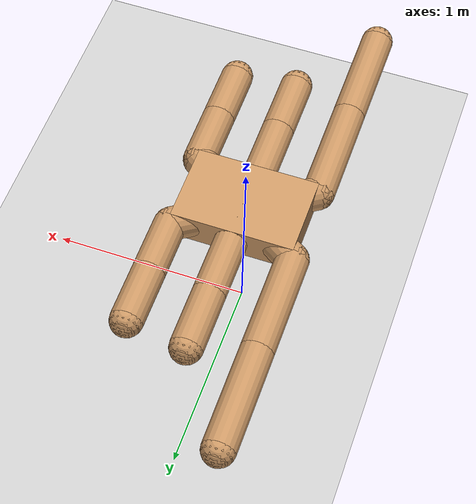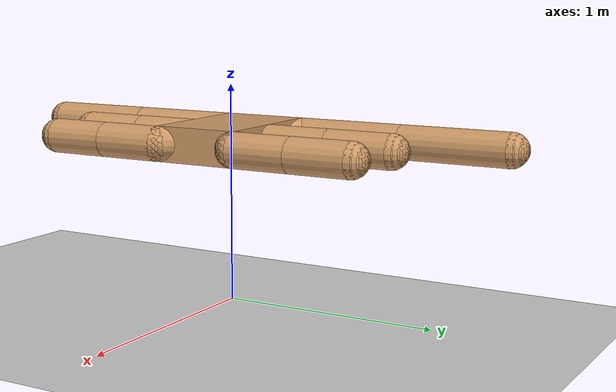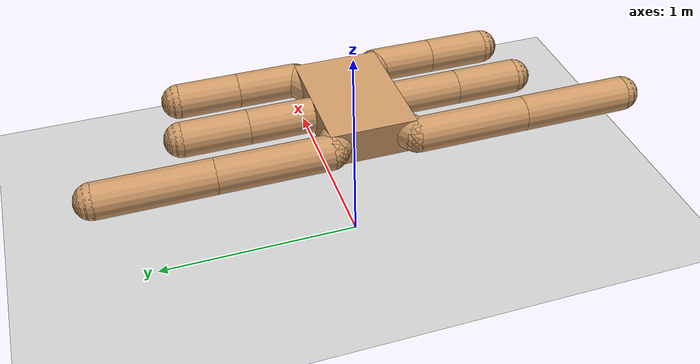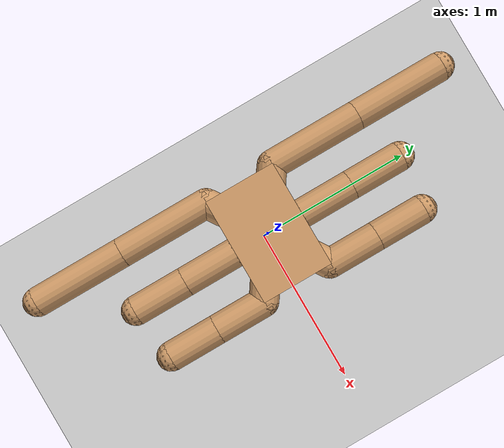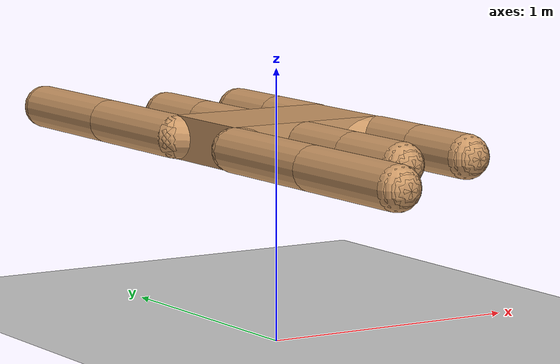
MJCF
<mujoco model="cricket2d">
  <compiler angle="degree" coordinate="local" inertiafromgeom="true"/>
  <option integrator="RK4" timestep="0.01"/>

  <custom>
    <numeric data="0.0 0.0 0.55 1.0 0.0 0.0 0.0 0.0 1.0 0.0 -1.0 0.0 -1.0 0.0 1.0" name="init_qpos"/>
  </custom>

  <default>
    <joint armature="1" damping="1" limited="true"/>
    <geom conaffinity="0" condim="3" density="5.0" friction="1 0.5 0.5" margin="0.01" rgba="0.8 0.6 0.4 1"/>
  </default>

  <asset>
    <texture builtin="gradient" height="100" rgb1="1 1 1" rgb2="0 0 0" type="skybox" width="100"/>
    <texture builtin="flat" height="1278" mark="cross" markrgb="1 1 1" name="texgeom" random="0.01" rgb1="0.8 0.6 0.4" rgb2="0.8 0.6 0.4" type="cube" width="127"/>
    <texture builtin="checker" height="100" name="texplane" rgb1=".25 .25 .25" rgb2=".3 .3 .3" type="2d" width="100" mark="cross" markrgb=".8 .8 .8"/>
    <material name="MatPlane" reflectance="0.5" shininess="1" specular="1" texrepeat="60 60" texture="texplane"/>
    <material name="geom" texture="texgeom" texuniform="true"/>
  </asset>

  <worldbody>
    <light cutoff="100" diffuse="1 1 1" dir="-0 0 -1.3" directional="true" exponent="1" pos="0 0 1.3" specular=".1 .1 .1"/>
    <geom conaffinity="1" condim="3" material="MatPlane" name="floor" pos="0 0 0" rgba="0.8 0.8 0.8 1" size="40 40 40" type="plane"/>
    <body name="torso" pos="0 0 0.75">
      <camera name="track" mode="trackcom" pos="0 -3 0.3" xyaxes="1 0 0 0 0 1"/>
      <geom name="torso_geom" type="box" pos="0 0 0" size=".3 .2 .08"/>

      <body name="LF_leg" pos="0 0 0">
        <geom fromto="0.0 0.0 0.0 0.3 0.2 0.0" name="LF_aux_geom" size="0.08" type="capsule"/>
        <body name="LF_femur" pos="0.3 0.2 0">
          <joint axis="0 0 -1" name="LF_hip" pos="0.0 0.0 0.0" range="-45 110" type="hinge"/>
          <geom fromto="0.0 0.0 0.0 0.0 0.28 0.0" name="LF_femur_geom" size="0.08" type="capsule"/>
          <body name="LF_tibia" pos="0.0 0.28 0.0">
            <joint axis="0 0 -1" name="LF_knee" pos="0.0 0.0 0.0" range="-180 180" type="hinge"/>
            <geom fromto="0.0 0.0 0.0 0.0 0.28 0.0" name="LF_tibia_geom" size="0.08" type="capsule"/>
            <geom name="LF_tip" pos="0.0 0.28 0.0" size="0.08" type="sphere"/>
          </body>
        </body>
      </body>

      <body name="RF_leg" pos="0 0 0">
        <geom fromto="0.0 0.0 0.0 0.3 -0.2 0.0" name="RF_aux_geom" size="0.08" type="capsule"/>
        <body name="RF_femur" pos="0.3 -0.2 0">
          <joint axis="0 0 -1" name="RF_hip" pos="0.0 0.0 0.0" range="-110 45" type="hinge"/>
          <geom fromto="0.0 0.0 0.0 0.0 -0.28 0.0" name="RF_femur_geom" size="0.08" type="capsule"/>
          <body name="RF_tibia" pos="0.0 -0.28 0.0">
            <joint axis="0 0 -1" name="RF_knee" pos="0.0 0.0 0.0" range="-180 180" type="hinge"/>
            <geom fromto="0.0 0.0 0.0 0.0 -0.28 0.0" name="RF_tibia_geom" size="0.08" type="capsule"/>
            <geom name="RF_tip" pos="0.0 -0.28 0.0" size="0.08" type="sphere"/>
          </body>
        </body>
      </body>

      <body name="LM_leg" pos="0 0 0">
        <geom fromto="0.0 0.0 0.0 0.0 0.2 0.0" name="LM_aux_geom" size="0.08" type="capsule"/>
        <body name="LM_femur" pos="0.0 0.2 0">
          <joint axis="0 0 -1" name="LM_hip" pos="0.0 0.0 0.0" range="-65 55" type="hinge"/>
          <geom fromto="0.0 0.0 0.0 0.0 0.3 0.0" name="LM_femur_geom" size="0.08" type="capsule"/>
          <body name="LM_tibia" pos="0.0 0.3 0.0">
            <joint axis="0 0 -1" name="LM_knee" pos="0.0 0.0 0.0" range="-180 180" type="hinge"/>
            <geom fromto="0.0 0.0 0.0 0.0 0.3 0.0" name="LM_tibia_geom" size="0.08" type="capsule"/>
            <geom name="LM_tip" pos="0.0 0.3 0.0" size="0.08" type="sphere"/>
          </body>
        </body>
      </body>

      <body name="RM_leg" pos="0 0 0">
        <geom fromto="0.0 0.0 0.0 0.0 -0.2 0.0" name="RM_aux_geom" size="0.08" type="capsule"/>
        <body name="RM_femur" pos="0.0 -0.2 0">
          <joint axis="0 0 -1" name="RM_hip" pos="0.0 0.0 0.0" range="-55 65" type="hinge"/>
          <geom fromto="0.0 0.0 0.0 0.0 -0.3 0.0" name="RM_femur_geom" size="0.08" type="capsule"/>
          <body name="RM_tibia" pos="0.0 -0.3 0.0">
            <joint axis="0 0 -1" name="RM_knee" pos="0.0 0.0 0.0" range="-180 180" type="hinge"/>
            <geom fromto="0.0 0.0 0.0 0.0 -0.3 0.0" name="RM_tibia_geom" size="0.08" type="capsule"/>
            <geom name="RM_tip" pos="0.0 -0.3 0.0" size="0.08" type="sphere"/>
          </body>
        </body>
      </body>

      <body name="LH_leg" pos="0 0 0">
        <geom fromto="0.0 0.0 0.0 -0.3 0.2 0.0" name="LH_aux_geom" size="0.08" type="capsule"/>
        <body name="LH_femur" pos="-0.3 0.2 0">
          <joint axis="0 0 -1" name="LH_hip" pos="0.0 0.0 0.0" range="-115 15" type="hinge"/>
          <geom fromto="0.0 0.0 0.0 0.0 0.51 0" name="LH_femur_geom" size="0.08" type="capsule"/>
          <body name="LH_tibia" pos="0.0 0.51 0">
            <joint axis="0 0 -1" name="LH_knee" pos="0.0 0.0 0.0" range="-180 0" type="hinge"/>
            <geom fromto="0.0 0.0 0.0 0.0 0.51 0" name="LH_tibia_geom" size="0.08" type="capsule"/>
            <geom name="LH_tip" pos="0.0 0.51 0.0" size="0.08" type="sphere"/>
          </body>
        </body>
      </body>

      <body name="RH_leg" pos="0 0 0">
        <geom fromto="0.0 0.0 0.0 -0.3 -0.2 0.0" name="RH_aux_geom" size="0.08" type="capsule"/>
        <body name="RH_femur" pos="-0.3 -0.2 0">
          <joint axis="0 0 -1" name="RH_hip" pos="0.0 0.0 0.0" range="-15 115" type="hinge"/>
          <geom fromto="0.0 0.0 0.0 0.0 -0.51 0" name="RH_femur_geom" size="0.08" type="capsule"/>
          <body name="RH_tibia" pos="0.0 -0.51 0">
            <joint axis="0 0 -1" name="RH_knee" pos="0.0 0.0 0.0" range="0 180" type="hinge"/>
            <geom fromto="0.0 0.0 0.0 0.0 -0.51 0" name="RH_tibia_geom" size="0.08" type="capsule"/>
            <geom name="RH_tip" pos="0.0 -0.51 0.0" size="0.08" type="sphere"/>
          </body>
        </body>
      </body>

    </body>
  </worldbody>

  <actuator>
    <position ctrllimited="true" ctrlrange="-0.7853981634 1.919862177" joint="LF_hip" gear="1" kp="30000"/>
    <position ctrllimited="true" ctrlrange="-1.134464014 0.9599310886" joint="LM_hip" gear="1" kp="30000"/>
    <position ctrllimited="true" ctrlrange="-2.00712864 0.2617993878" joint="LH_hip" gear="1" kp="30000"/>
    <position ctrllimited="true" ctrlrange="-1.919862177 0.7853981634" joint="RF_hip" gear="1" kp="30000"/>
    <position ctrllimited="true" ctrlrange="-0.9599310886 1.134464014" joint="RM_hip" gear="1" kp="30000"/>
    <position ctrllimited="true" ctrlrange="-0.2617993878 2.00712864" joint="RH_hip" gear="1" kp="30000"/>
    <position ctrllimited="true" ctrlrange="-3.141592654 3.141592654" joint="LF_knee" gear="1" kp="30000"/>
    <position ctrllimited="true" ctrlrange="-3.141592654 3.141592654" joint="LM_knee" gear="1" kp="30000"/>
    <position ctrllimited="true" ctrlrange="-3.141592654 0.0" joint="LH_knee" gear="1" kp="30000"/>
    <position ctrllimited="true" ctrlrange="-3.141592654 3.141592654" joint="RF_knee" gear="1" kp="30000"/>
    <position ctrllimited="true" ctrlrange="-3.141592654 3.141592654" joint="RM_knee" gear="1" kp="30000"/>
    <position ctrllimited="true" ctrlrange="0.0 3.141592654" joint="RH_knee" gear="1" kp="30000"/>
    </actuator>
</mujoco>
